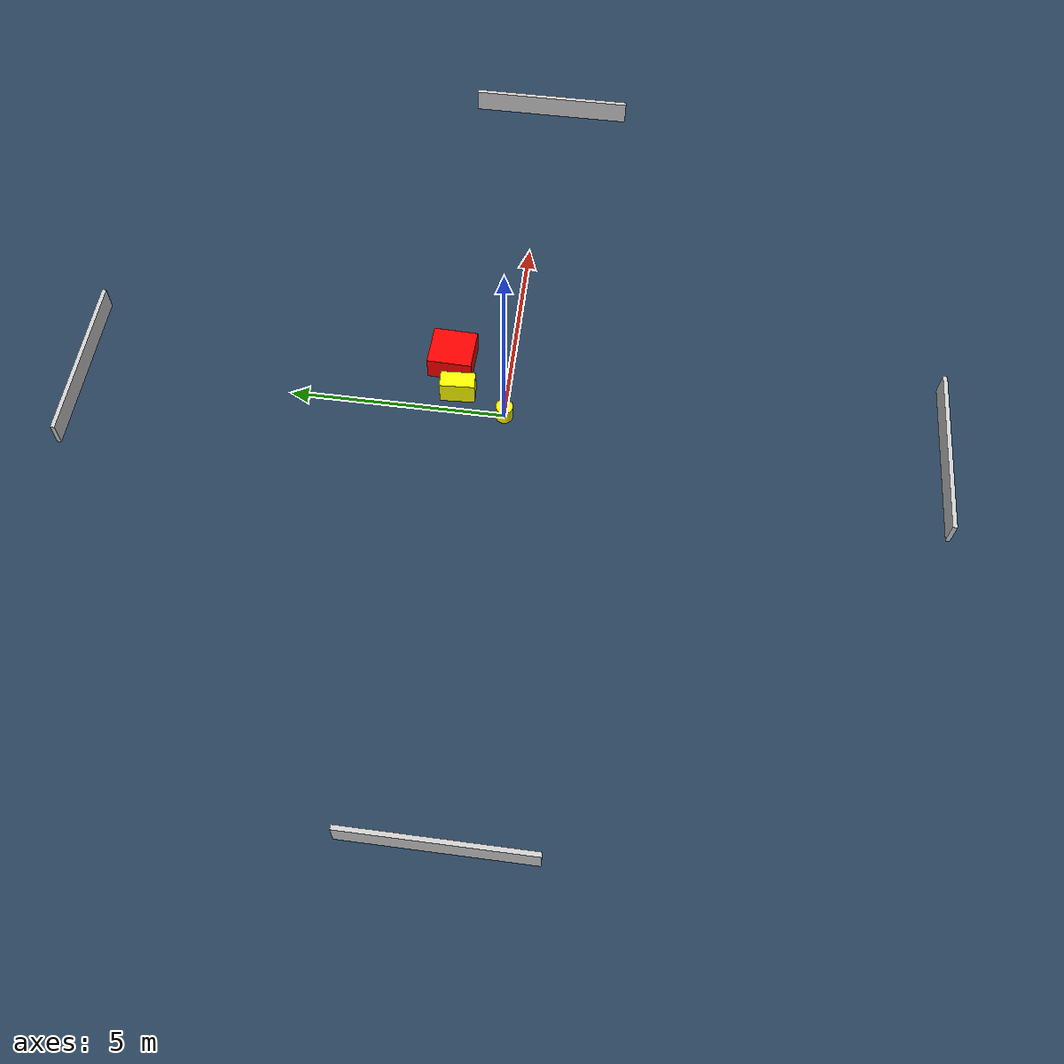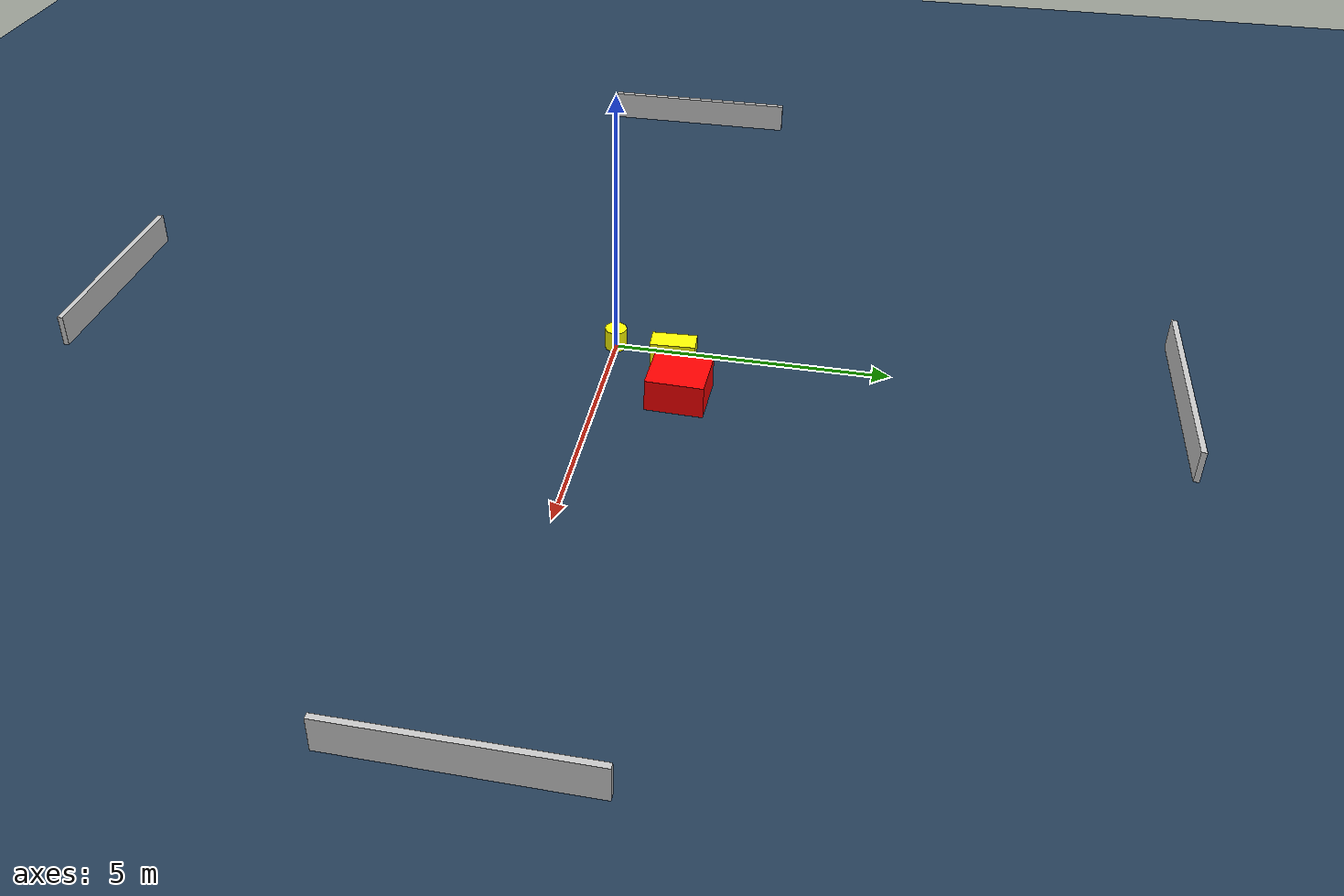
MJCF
<?xml version="1.0" ?>
<mujoco model="generated_environment">
  <option timestep="0.01" integrator="RK4" cone="elliptic"/>
  <default>
    <geom density="1"/>
  </default>
  <asset>
    <texture builtin="gradient" height="3072" name="skybox" rgb1="0.3 0.5 0.7" rgb2="0 0 0" type="skybox" width="512"/>
    <texture builtin="checker" height="300" name="groundplane" rgb1="0.2 0.3 0.4" rgb2="0.1 0.2 0.3" type="2d" width="300"/>
    <material name="groundplane" reflectance="0.2" texrepeat="5 5" texture="groundplane"/>
  </asset>
  <worldbody>
    <light dir="0 0 -1" directional="true" pos="0 0 1.5"/>
    <geom condim="3" friction="0.5 0.005 0.001" material="groundplane" name="floor" pos="0 0 0" size="0 0 0.05" type="plane"/>
    <body name="walls">
      <geom name="wall_1" condim="4" pos="-10.0 0.0 0.3" rgba="0.800000011920929 0.800000011920929 0.800000011920929 1.0" size="0.05 2.0 0.3" type="box"/>
      <geom name="wall_2" condim="4" pos="10.0 0.0 0.3" rgba="0.800000011920929 0.800000011920929 0.800000011920929 1.0" size="0.05 2.0 0.3" type="box"/>
      <geom name="wall_3" condim="4" pos="0.0 -10.0 0.3" rgba="0.800000011920929 0.800000011920929 0.800000011920929 1.0" size="2.0 0.05 0.3" type="box"/>
      <geom name="wall_4" condim="4" pos="0.0 10.0 0.3" rgba="0.800000011920929 0.800000011920929 0.800000011920929 1.0" size="2.0 0.05 0.3" type="box"/>
    </body>
    <body name="robot">
      <joint name="joint_x" type="slide" pos="0 0 0" axis="1 0 0"/>
      <joint name="joint_y" type="slide" pos="0 0 0" axis="0 1 0"/>
      <geom name="robot" type="cylinder" pos="0.0 0.0 0.2" size="0.2 0.2 0.0" mass="5.0" friction="1.0 0.005 0.0001" condim="4" rgba="1.0 1.0 0.0 1.0"/>
    </body>
    <body name="obstacle_1_movable">
      <geom name="obstacle_1_movable" condim="4" pos="0.47711691925202826 1.1511143656882357 0.3" euler="0 0 182.95811760244382" friction="0.0 0.005 0.001" rgba="1.0 1.0 0.0 1.0" size="0.20449025412275015 0.4056873310146901 0.3" type="box" mass="0.1"/>
      <joint type="free"/>
    </body>
    <body name="obstacle_2_static">
      <geom name="obstacle_2_static" condim="4" pos="1.3793973775226482 1.4034782000542705 0.3" euler="0 0 268.1215216091455" friction="0.0 0.005 0.001" rgba="1.0 0.0 0.0 1.0" size="0.5186901827610403 0.4839666583230025 0.3" type="box"/>
    </body>
  </worldbody>
  <actuator>
    <motor name="actuator_x" joint="joint_x" gear="1" ctrlrange="-1 1"/>
    <motor name="actuator_y" joint="joint_y" gear="1" ctrlrange="-1 1"/>
  </actuator>
</mujoco>
